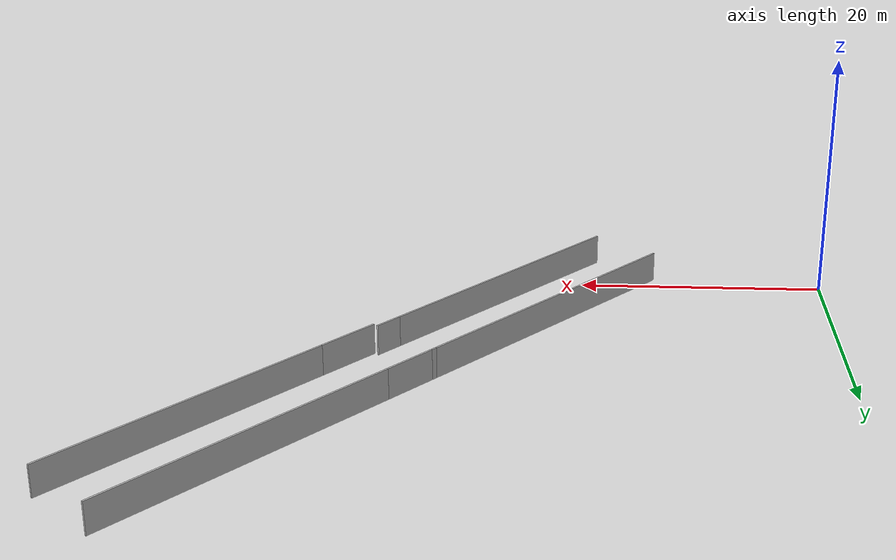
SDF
<?xml version="1.0" ?>
<sdf version="1.6">
  <model name="sps_1649">
    <pose frame="">0 0 0 0 -0 0</pose>
    <static>1</static>
    <self_collide>0</self_collide>
    <allow_auto_disable>0</allow_auto_disable>
    <link name="Wall132">
      <kinematic>0</kinematic>
      <gravity>1</gravity>
      <self_collide>0</self_collide>
      <collision name="collision">
        <geometry>
          <box>
            <size>23.6953 0.15 2.5</size>
          </box>
        </geometry>
        <pose frame="">0 0 0 0 -0 0</pose>
      </collision>
      <visual name="visual">
        <geometry>
          <box>
            <size>23.6953 0.15 2.5</size>
          </box>
        </geometry>
        <pose frame="">0 0 0 0 -0 0</pose>
        <cast_shadows>1</cast_shadows>
        <transparency>0.0</transparency>
      </visual>
      <pose frame="">26.5887 3.67323 1.25 0 -0 0.843075</pose>
    </link>
    <link name="Wall133">
      <kinematic>0</kinematic>
      <gravity>1</gravity>
      <self_collide>0</self_collide>
      <collision name="collision">
        <geometry>
          <box>
            <size>2.30526 0.15 2.5</size>
          </box>
        </geometry>
        <pose frame="">0 0 0 0 -0 0</pose>
      </collision>
      <visual name="visual">
        <geometry>
          <box>
            <size>2.30526 0.15 2.5</size>
          </box>
        </geometry>
        <pose frame="">0 0 0 0 -0 0</pose>
        <cast_shadows>1</cast_shadows>
        <transparency>0.0</transparency>
      </visual>
      <pose frame="">35.2361 13.3804 1.25 0 -0 0.843075</pose>
    </link>
    <link name="Wall134">
      <kinematic>0</kinematic>
      <gravity>1</gravity>
      <self_collide>0</self_collide>
      <collision name="collision">
        <geometry>
          <box>
            <size>4.43066 0.15 2.5</size>
          </box>
        </geometry>
        <pose frame="">0 0 0 0 -0 0</pose>
      </collision>
      <visual name="visual">
        <geometry>
          <box>
            <size>4.43066 0.15 2.5</size>
          </box>
        </geometry>
        <pose frame="">0 0 0 0 -0 0</pose>
        <cast_shadows>1</cast_shadows>
        <transparency>0.0</transparency>
      </visual>
      <pose frame="">32.996 19.8855 1.25 0 -0 0.84313</pose>
    </link>
    <link name="Wall135">
      <kinematic>0</kinematic>
      <gravity>1</gravity>
      <self_collide>0</self_collide>
      <collision name="collision">
        <geometry>
          <box>
            <size>25.5701 0.15 2.5</size>
          </box>
        </geometry>
        <pose frame="">0 0 0 0 -0 0</pose>
      </collision>
      <visual name="visual">
        <geometry>
          <box>
            <size>25.5701 0.15 2.5</size>
          </box>
        </geometry>
        <pose frame="">0 0 0 0 -0 0</pose>
        <cast_shadows>1</cast_shadows>
        <transparency>0.0</transparency>
      </visual>
      <pose frame="">42.9731 31.0867 1.25 0 -0 0.84313</pose>
    </link>
    <link name="Wall300">
      <kinematic>0</kinematic>
      <gravity>1</gravity>
      <self_collide>0</self_collide>
      <collision name="collision">
        <geometry>
          <box>
            <size>25.9467 0.15 2.5</size>
          </box>
        </geometry>
        <pose frame="">0 0 0 0 -0 0</pose>
      </collision>
      <visual name="visual">
        <geometry>
          <box>
            <size>25.9467 0.15 2.5</size>
          </box>
        </geometry>
        <pose frame="">0 0 0 0 -0 0</pose>
        <cast_shadows>1</cast_shadows>
        <transparency>0.0</transparency>
      </visual>
      <pose frame="">22.5919 8.20579 1.25 0 -0 0.843096</pose>
    </link>
    <link name="Wall301">
      <kinematic>0</kinematic>
      <gravity>1</gravity>
      <self_collide>0</self_collide>
      <collision name="collision">
        <geometry>
          <box>
            <size>0.452917 0.15 2.5</size>
          </box>
        </geometry>
        <pose frame="">0 0 0 0 -0 0</pose>
      </collision>
      <visual name="visual">
        <geometry>
          <box>
            <size>0.452917 0.15 2.5</size>
          </box>
        </geometry>
        <pose frame="">0 0 0 0 -0 0</pose>
        <cast_shadows>1</cast_shadows>
        <transparency>0.0</transparency>
      </visual>
      <pose frame="">31.3719 18.0622 1.25 0 -0 0.843096</pose>
    </link>
    <link name="Wall555">
      <kinematic>0</kinematic>
      <gravity>1</gravity>
      <self_collide>0</self_collide>
      <collision name="collision">
        <geometry>
          <box>
            <size>5.24737 0.15 2.5</size>
          </box>
        </geometry>
        <pose frame="">0 0 0 0 -0 0</pose>
      </collision>
      <visual name="visual">
        <geometry>
          <box>
            <size>5.24737 0.15 2.5</size>
          </box>
        </geometry>
        <pose frame="">0 0 0 0 -0 0</pose>
        <cast_shadows>1</cast_shadows>
        <transparency>0.0</transparency>
      </visual>
      <pose frame="">38.0462 15.934 1.25 0 -0 0.843087</pose>
    </link>
    <link name="Wall556">
      <kinematic>0</kinematic>
      <gravity>1</gravity>
      <self_collide>0</self_collide>
      <collision name="collision">
        <geometry>
          <box>
            <size>24.7535 0.15 2.5</size>
          </box>
        </geometry>
        <pose frame="">0 0 0 0 -0 0</pose>
      </collision>
      <visual name="visual">
        <geometry>
          <box>
            <size>24.7535 0.15 2.5</size>
          </box>
        </geometry>
        <pose frame="">0 0 0 0 -0 0</pose>
        <cast_shadows>1</cast_shadows>
        <transparency>0.0</transparency>
      </visual>
      <pose frame="">48.0239 27.1348 1.25 0 -0 0.843087</pose>
    </link>
  </model>
</sdf>
